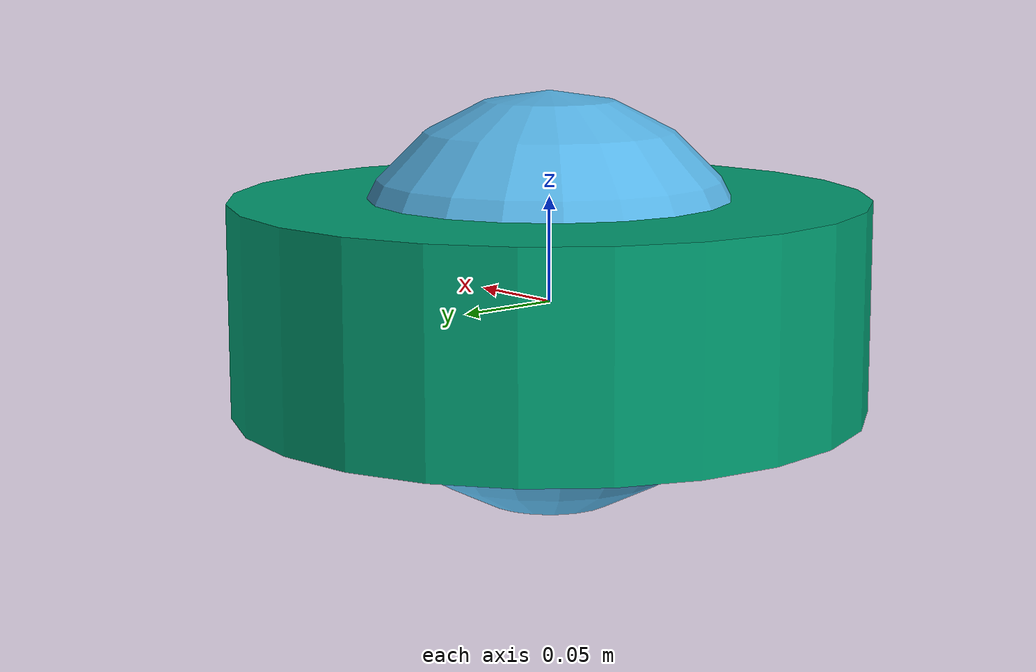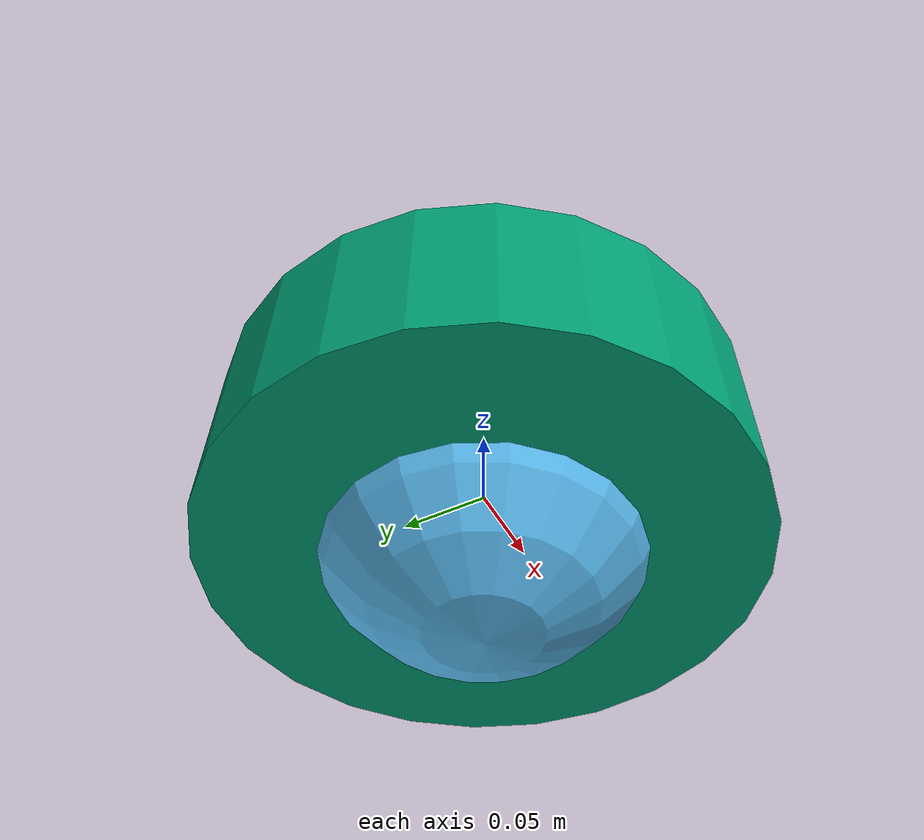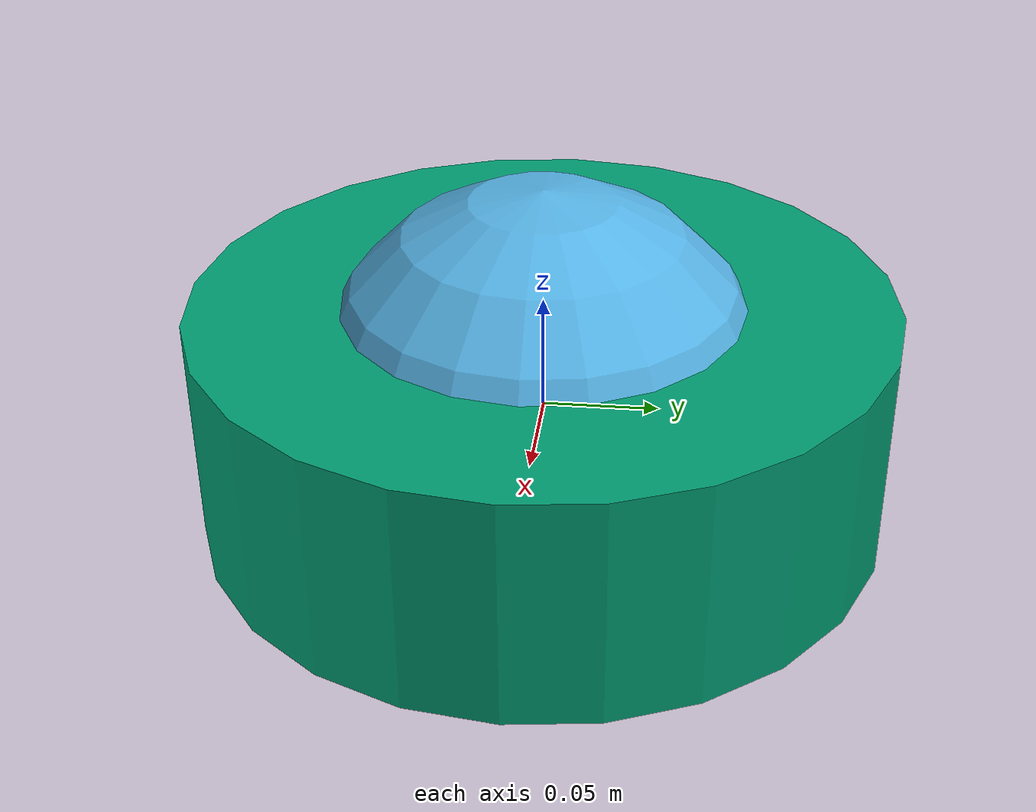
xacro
<?xml version="1.0"?>
<robot xmlns:xacro="http://ros.org/wiki/xacro" name="mltdma">
  <xacro:arg name="namespace" default="mltdma"/>
  <xacro:property name="namespace" value="$(arg namespace)" scope="global" />

  <link name="${namespace}/base_link">
  </link>

  <joint name="${namespace}_base_to_motion_sensor_joint" type="fixed">
      <parent link="${namespace}/base_link"/>
      <child link="${namespace}/motion_sensor"/>
      <origin xyz="0 0 0" rpy="0 0 1.5708"/>
  </joint>

  <link name="${namespace}/motion_sensor">
    <visual>
        <geometry>
            <sphere radius="0.1"/>
        </geometry>
    </visual>
  </link>

  <link name="${namespace}/radar">
    <visual>
      <geometry>
        <cylinder length="0.1" radius="0.15"/>
      </geometry>
      <origin rpy="0 0 0" xyz="0 0 0"/>
    </visual>
  </link>

  <joint name="base_to_radar" type="fixed">
    <parent link="${namespace}/base_link"/>
    <child link="${namespace}/radar"/>
    <origin rpy="0 0 0"/>
  </joint>
</robot>
